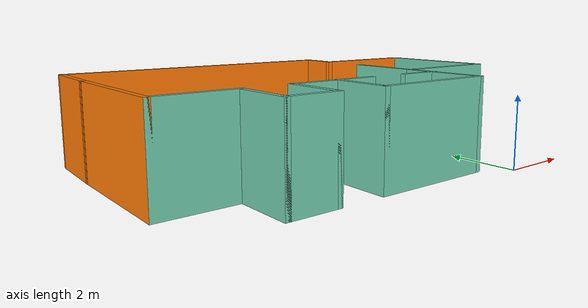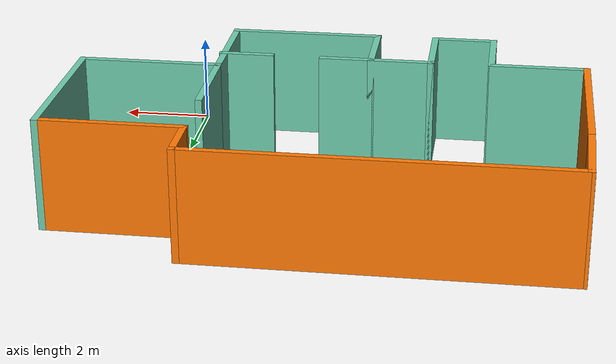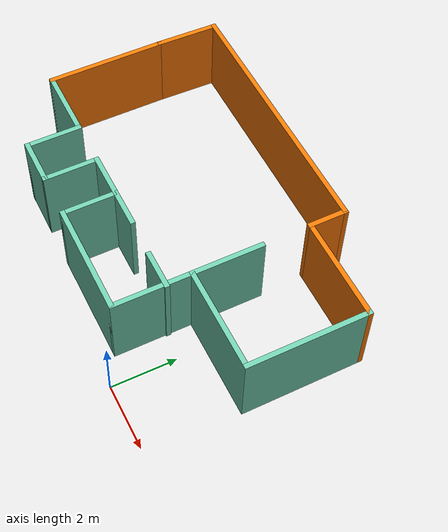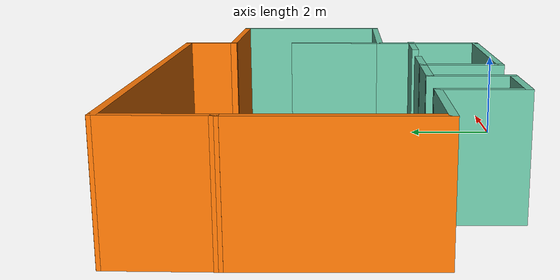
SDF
<?xml version='1.0'?>
<sdf version='1.6'>
  <model name='environment'>
    <pose frame=''>-3.42775 4.08345 0 0 -0 0</pose>
    <link name='Wall_1'>
      <collision name='Wall_1_Collision'>
        <geometry>
          <box>
            <size>3.75 0.15 2.5</size>
          </box>
        </geometry>
        <pose frame=''>0 0 1.25 0 -0 0</pose>
      </collision>
      <visual name='Wall_1_Visual'>
        <pose frame=''>0 0 1.25 0 -0 0</pose>
        <geometry>
          <box>
            <size>3.75 0.15 2.5</size>
          </box>
        </geometry>
        <material>
          <script>
            <uri>file://media/materials/scripts/gazebo.material</uri>
            <name>Gazebo/Grey</name>
          </script>
          <ambient>0.996078 0.47451 0.0196078 1</ambient>
        </material>
        <meta>
          <layer>0</layer>
        </meta>
      </visual>
      <pose frame=''>-5.624 -0.125999 0 0 0 -1.5708</pose>
    </link>
    <link name='Wall_10'>
      <collision name='Wall_10_Collision'>
        <geometry>
          <box>
            <size>3.25 0.15 2.5</size>
          </box>
        </geometry>
        <pose frame=''>0 0 1.25 0 -0 0</pose>
      </collision>
      <visual name='Wall_10_Visual'>
        <pose frame=''>0 0 1.25 0 -0 0</pose>
        <geometry>
          <box>
            <size>3.25 0.15 2.5</size>
          </box>
        </geometry>
        <material>
          <script>
            <uri>file://media/materials/scripts/gazebo.material</uri>
            <name>Gazebo/Grey</name>
          </script>
          <ambient>0.435294 0.796078 0.67451 1</ambient>
        </material>
        <meta>
          <layer>0</layer>
        </meta>
      </visual>
      <pose frame=''>4.076 -1.176 0 0 -0 0</pose>
    </link>
    <link name='Wall_11'>
      <collision name='Wall_11_Collision'>
        <geometry>
          <box>
            <size>3.75 0.15 2.5</size>
          </box>
        </geometry>
        <pose frame=''>0 0 1.25 0 -0 0</pose>
      </collision>
      <visual name='Wall_11_Visual'>
        <pose frame=''>0 0 1.25 0 -0 0</pose>
        <geometry>
          <box>
            <size>3.75 0.15 2.5</size>
          </box>
        </geometry>
        <material>
          <script>
            <uri>file://media/materials/scripts/gazebo.material</uri>
            <name>Gazebo/Grey</name>
          </script>
          <ambient>0.435294 0.796078 0.67451 1</ambient>
        </material>
        <meta>
          <layer>0</layer>
        </meta>
      </visual>
      <pose frame=''>5.626 0.624001 0 0 -0 1.5708</pose>
    </link>
    <link name='Wall_12'>
      <collision name='Wall_12_Collision'>
        <geometry>
          <box>
            <size>3.25 0.15 2.5</size>
          </box>
        </geometry>
        <pose frame=''>0 0 1.25 0 -0 0</pose>
      </collision>
      <visual name='Wall_12_Visual'>
        <pose frame=''>0 0 1.25 0 -0 0</pose>
        <geometry>
          <box>
            <size>3.25 0.15 2.5</size>
          </box>
        </geometry>
        <material>
          <script>
            <uri>file://media/materials/scripts/gazebo.material</uri>
            <name>Gazebo/Grey</name>
          </script>
          <ambient>0.996078 0.47451 0.0196078 1</ambient>
        </material>
        <meta>
          <layer>0</layer>
        </meta>
      </visual>
      <pose frame=''>4.076 2.424 0 0 -0 3.14159</pose>
    </link>
    <link name='Wall_14'>
      <collision name='Wall_14_Collision'>
        <geometry>
          <box>
            <size>1.25 0.15 2.5</size>
          </box>
        </geometry>
        <pose frame=''>0 0 1.25 0 -0 0</pose>
      </collision>
      <visual name='Wall_14_Visual'>
        <pose frame=''>0 0 1.25 0 -0 0</pose>
        <geometry>
          <box>
            <size>1.25 0.15 2.5</size>
          </box>
        </geometry>
        <material>
          <script>
            <uri>file://media/materials/scripts/gazebo.material</uri>
            <name>Gazebo/Grey</name>
          </script>
          <ambient>0.996078 0.47451 0.0196078 1</ambient>
        </material>
        <meta>
          <layer>0</layer>
        </meta>
      </visual>
      <pose frame=''>2.526 2.974 0 0 -0 1.5708</pose>
    </link>
    <link name='Wall_15'>
      <collision name='Wall_15_Collision'>
        <geometry>
          <box>
            <size>8.25 0.15 2.5</size>
          </box>
        </geometry>
        <pose frame=''>0 0 1.25 0 -0 0</pose>
      </collision>
      <visual name='Wall_15_Visual'>
        <pose frame=''>0 0 1.25 0 -0 0</pose>
        <geometry>
          <box>
            <size>8.25 0.15 2.5</size>
          </box>
        </geometry>
        <material>
          <script>
            <uri>file://media/materials/scripts/gazebo.material</uri>
            <name>Gazebo/Grey</name>
          </script>
          <ambient>0.996078 0.47451 0.0196078 1</ambient>
        </material>
        <meta>
          <layer>0</layer>
        </meta>
      </visual>
      <pose frame=''>-1.524 3.524 0 0 -0 3.14159</pose>
    </link>
    <link name='Wall_16'>
      <collision name='Wall_16_Collision'>
        <geometry>
          <box>
            <size>2.00068 0.15 2.5</size>
          </box>
        </geometry>
        <pose frame=''>0 0 1.25 0 -0 0</pose>
      </collision>
      <visual name='Wall_16_Visual'>
        <pose frame=''>0 0 1.25 0 -0 0</pose>
        <geometry>
          <box>
            <size>2.00068 0.15 2.5</size>
          </box>
        </geometry>
        <material>
          <script>
            <uri>file://media/materials/scripts/gazebo.material</uri>
            <name>Gazebo/Grey</name>
          </script>
          <ambient>0.996078 0.47451 0.0196078 1</ambient>
        </material>
        <meta>
          <layer>0</layer>
        </meta>
      </visual>
      <pose frame=''>-5.599 2.599 0 0 0 -1.59782</pose>
    </link>
    <link name='Wall_18'>
      <collision name='Wall_18_Collision'>
        <geometry>
          <box>
            <size>1.25 0.15 2.5</size>
          </box>
        </geometry>
        <pose frame=''>0 0 1.25 0 -0 0</pose>
      </collision>
      <visual name='Wall_18_Visual'>
        <pose frame=''>0 0 1.25 0 -0 0</pose>
        <geometry>
          <box>
            <size>1.25 0.15 2.5</size>
          </box>
        </geometry>
        <material>
          <script>
            <uri>file://media/materials/scripts/gazebo.material</uri>
            <name>Gazebo/Grey</name>
          </script>
          <ambient>0.435294 0.796078 0.67451 1</ambient>
        </material>
        <meta>
          <layer>0</layer>
        </meta>
      </visual>
      <pose frame=''>-0.274001 -1.926 0 0 -0 0</pose>
    </link>
    <link name='Wall_2'>
      <collision name='Wall_2_Collision'>
        <geometry>
          <box>
            <size>2.25 0.15 2.5</size>
          </box>
        </geometry>
        <pose frame=''>0 0 1.25 0 -0 0</pose>
      </collision>
      <visual name='Wall_2_Visual'>
        <pose frame=''>0 0 1.25 0 -0 0</pose>
        <geometry>
          <box>
            <size>2.25 0.15 2.5</size>
          </box>
        </geometry>
        <material>
          <script>
            <uri>file://media/materials/scripts/gazebo.material</uri>
            <name>Gazebo/Grey</name>
          </script>
          <ambient>0.435294 0.796078 0.67451 1</ambient>
        </material>
        <meta>
          <layer>0</layer>
        </meta>
      </visual>
      <pose frame=''>-4.574 -1.926 0 0 -0 0</pose>
    </link>
    <link name='Wall_20'>
      <collision name='Wall_20_Collision'>
        <geometry>
          <box>
            <size>1.25 0.15 2.5</size>
          </box>
        </geometry>
        <pose frame=''>0 0 1.25 0 -0 0</pose>
      </collision>
      <visual name='Wall_20_Visual'>
        <pose frame=''>0 0 1.25 0 -0 0</pose>
        <geometry>
          <box>
            <size>1.25 0.15 2.5</size>
          </box>
        </geometry>
        <material>
          <script>
            <uri>file://media/materials/scripts/gazebo.material</uri>
            <name>Gazebo/Grey</name>
          </script>
          <ambient>0.435294 0.796078 0.67451 1</ambient>
        </material>
        <meta>
          <layer>0</layer>
        </meta>
      </visual>
      <pose frame=''>2.01717 -1.95726 0 0 -0 3.14159</pose>
    </link>
    <link name='Wall_22'>
      <collision name='Wall_22_Collision'>
        <geometry>
          <box>
            <size>2.25 0.15 2.5</size>
          </box>
        </geometry>
        <pose frame=''>0 0 1.25 0 -0 0</pose>
      </collision>
      <visual name='Wall_22_Visual'>
        <pose frame=''>0 0 1.25 0 -0 0</pose>
        <geometry>
          <box>
            <size>2.25 0.15 2.5</size>
          </box>
        </geometry>
        <material>
          <script>
            <uri>file://media/materials/scripts/gazebo.material</uri>
            <name>Gazebo/Grey</name>
          </script>
          <ambient>0.435294 0.796078 0.67451 1</ambient>
        </material>
        <meta>
          <layer>0</layer>
        </meta>
      </visual>
      <pose frame=''>2.526 -0.125999 0 0 -0 1.5708</pose>
    </link>
    <link name='Wall_3'>
      <collision name='Wall_3_Collision'>
        <geometry>
          <box>
            <size>1.75 0.15 2.5</size>
          </box>
        </geometry>
        <pose frame=''>0 0 1.25 0 -0 0</pose>
      </collision>
      <visual name='Wall_3_Visual'>
        <pose frame=''>0 0 1.25 0 -0 0</pose>
        <geometry>
          <box>
            <size>1.75 0.15 2.5</size>
          </box>
        </geometry>
        <material>
          <script>
            <uri>file://media/materials/scripts/gazebo.material</uri>
            <name>Gazebo/Grey</name>
          </script>
          <ambient>0.435294 0.796078 0.67451 1</ambient>
        </material>
        <meta>
          <layer>0</layer>
        </meta>
      </visual>
      <pose frame=''>-3.524 -2.726 0 0 0 -1.5708</pose>
    </link>
    <link name='Wall_4'>
      <collision name='Wall_4_Collision'>
        <geometry>
          <box>
            <size>1.5 0.15 2.5</size>
          </box>
        </geometry>
        <pose frame=''>0 0 1.25 0 -0 0</pose>
      </collision>
      <visual name='Wall_4_Visual'>
        <pose frame=''>0 0 1.25 0 -0 0</pose>
        <geometry>
          <box>
            <size>1.5 0.15 2.5</size>
          </box>
        </geometry>
        <material>
          <script>
            <uri>file://media/materials/scripts/gazebo.material</uri>
            <name>Gazebo/Grey</name>
          </script>
          <ambient>0.435294 0.796078 0.67451 1</ambient>
        </material>
        <meta>
          <layer>0</layer>
        </meta>
      </visual>
      <pose frame=''>-2.849 -3.526 0 0 -0 0</pose>
    </link>
    <link name='Wall_5'>
      <collision name='Wall_5_Collision'>
        <geometry>
          <box>
            <size>1.75 0.15 2.5</size>
          </box>
        </geometry>
        <pose frame=''>0 0 1.25 0 -0 0</pose>
      </collision>
      <visual name='Wall_5_Visual'>
        <pose frame=''>0 0 1.25 0 -0 0</pose>
        <geometry>
          <box>
            <size>1.75 0.15 2.5</size>
          </box>
        </geometry>
        <material>
          <script>
            <uri>file://media/materials/scripts/gazebo.material</uri>
            <name>Gazebo/Grey</name>
          </script>
          <ambient>0.435294 0.796078 0.67451 1</ambient>
        </material>
        <meta>
          <layer>0</layer>
        </meta>
      </visual>
      <pose frame=''>-2.174 -2.726 0 0 -0 1.5708</pose>
    </link>
    <link name='Wall_6'>
      <collision name='Wall_6_Collision'>
        <geometry>
          <box>
            <size>1.5 0.15 2.5</size>
          </box>
        </geometry>
        <pose frame=''>0 0 1.25 0 -0 0</pose>
      </collision>
      <visual name='Wall_6_Visual'>
        <pose frame=''>0 0 1.25 0 -0 0</pose>
        <geometry>
          <box>
            <size>1.5 0.15 2.5</size>
          </box>
        </geometry>
        <material>
          <script>
            <uri>file://media/materials/scripts/gazebo.material</uri>
            <name>Gazebo/Grey</name>
          </script>
          <ambient>0.435294 0.796078 0.67451 1</ambient>
        </material>
        <meta>
          <layer>0</layer>
        </meta>
      </visual>
      <pose frame=''>-1.499 -1.926 0 0 -0 0</pose>
    </link>
    <link name='Wall_7'>
      <collision name='Wall_7_Collision'>
        <geometry>
          <box>
            <size>1.75 0.15 2.5</size>
          </box>
        </geometry>
        <pose frame=''>0 0 1.25 0 -0 0</pose>
      </collision>
      <visual name='Wall_7_Visual'>
        <pose frame=''>0 0 1.25 0 -0 0</pose>
        <geometry>
          <box>
            <size>1.75 0.15 2.5</size>
          </box>
        </geometry>
        <material>
          <script>
            <uri>file://media/materials/scripts/gazebo.material</uri>
            <name>Gazebo/Grey</name>
          </script>
          <ambient>0.435294 0.796078 0.67451 1</ambient>
        </material>
        <meta>
          <layer>0</layer>
        </meta>
      </visual>
      <pose frame=''>-0.824001 -2.726 0 0 0 -1.5708</pose>
    </link>
    <link name='Wall_8'>
      <collision name='Wall_8_Collision'>
        <geometry>
          <box>
            <size>3.5 0.15 2.5</size>
          </box>
        </geometry>
        <pose frame=''>0 0 1.25 0 -0 0</pose>
      </collision>
      <visual name='Wall_8_Visual'>
        <pose frame=''>0 0 1.25 0 -0 0</pose>
        <geometry>
          <box>
            <size>3.5 0.15 2.5</size>
          </box>
        </geometry>
        <material>
          <script>
            <uri>file://media/materials/scripts/gazebo.material</uri>
            <name>Gazebo/Grey</name>
          </script>
          <ambient>0.435294 0.796078 0.67451 1</ambient>
        </material>
        <meta>
          <layer>0</layer>
        </meta>
      </visual>
      <pose frame=''>0.850999 -3.526 0 0 -0 0</pose>
    </link>
    <link name='Wall_9'>
      <collision name='Wall_9_Collision'>
        <geometry>
          <box>
            <size>2.5 0.15 2.5</size>
          </box>
        </geometry>
        <pose frame=''>0 0 1.25 0 -0 0</pose>
      </collision>
      <visual name='Wall_9_Visual'>
        <pose frame=''>0 0 1.25 0 -0 0</pose>
        <geometry>
          <box>
            <size>2.5 0.15 2.5</size>
          </box>
        </geometry>
        <material>
          <script>
            <uri>file://media/materials/scripts/gazebo.material</uri>
            <name>Gazebo/Grey</name>
          </script>
          <ambient>0.435294 0.796078 0.67451 1</ambient>
        </material>
        <meta>
          <layer>0</layer>
        </meta>
      </visual>
      <pose frame=''>2.526 -2.351 0 0 -0 1.5708</pose>
    </link>
    <static>1</static>
  </model>
</sdf>
